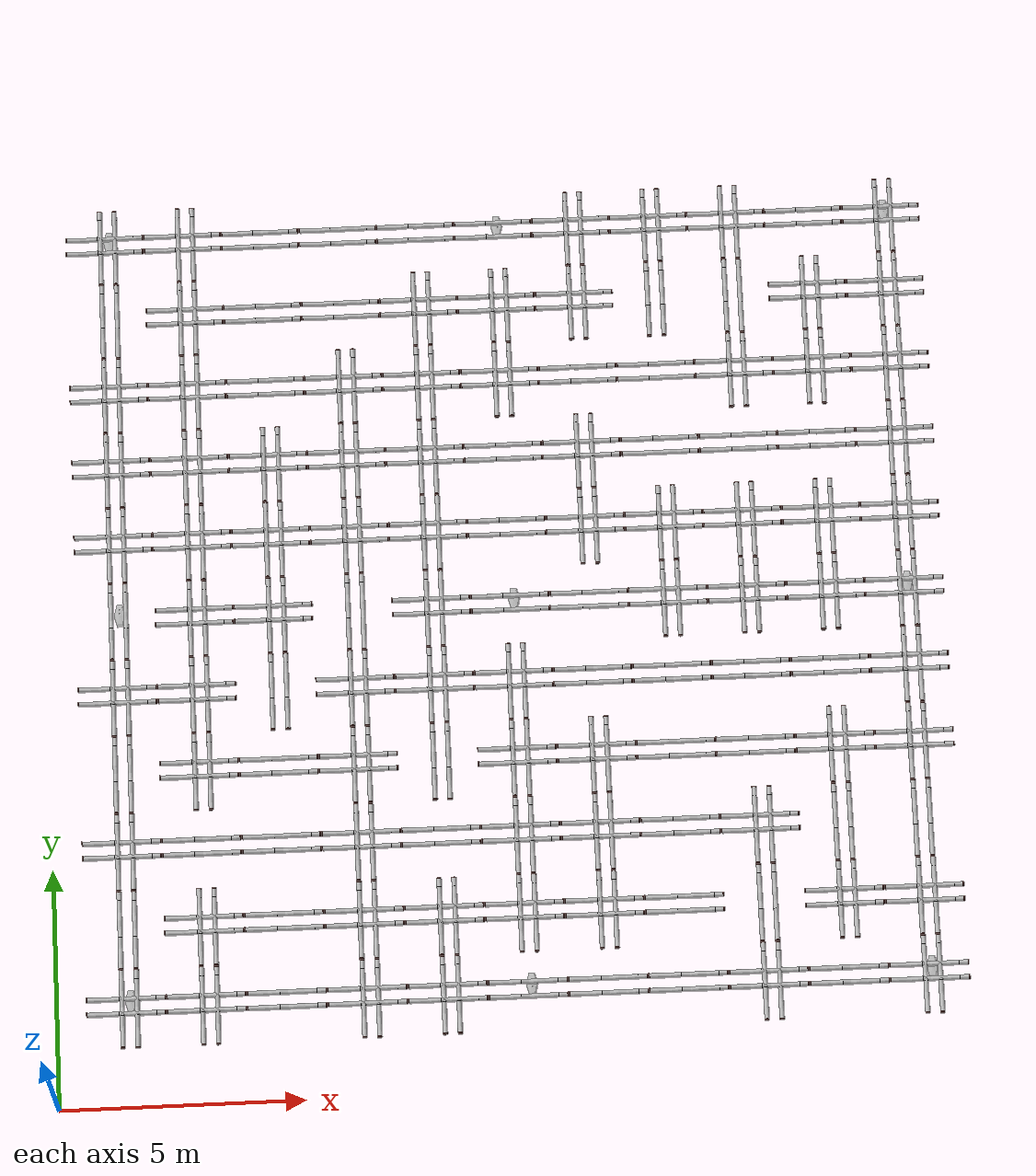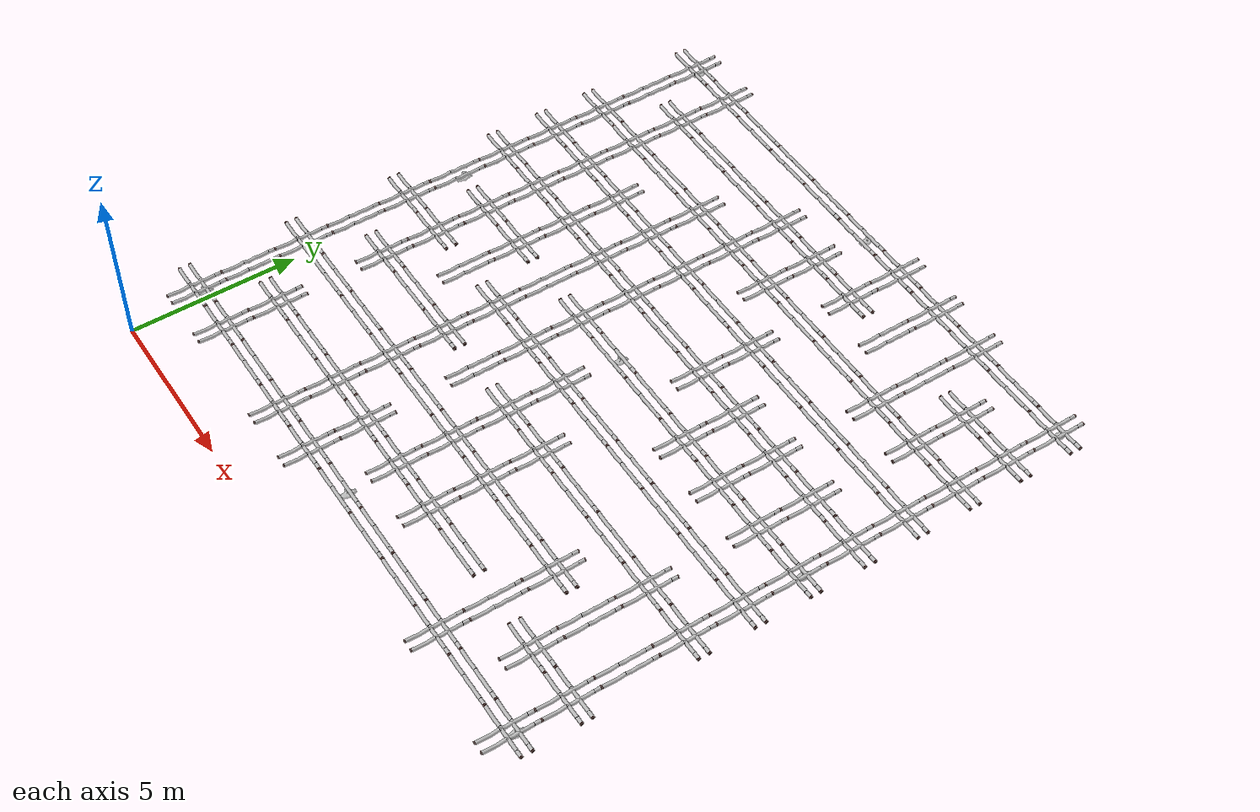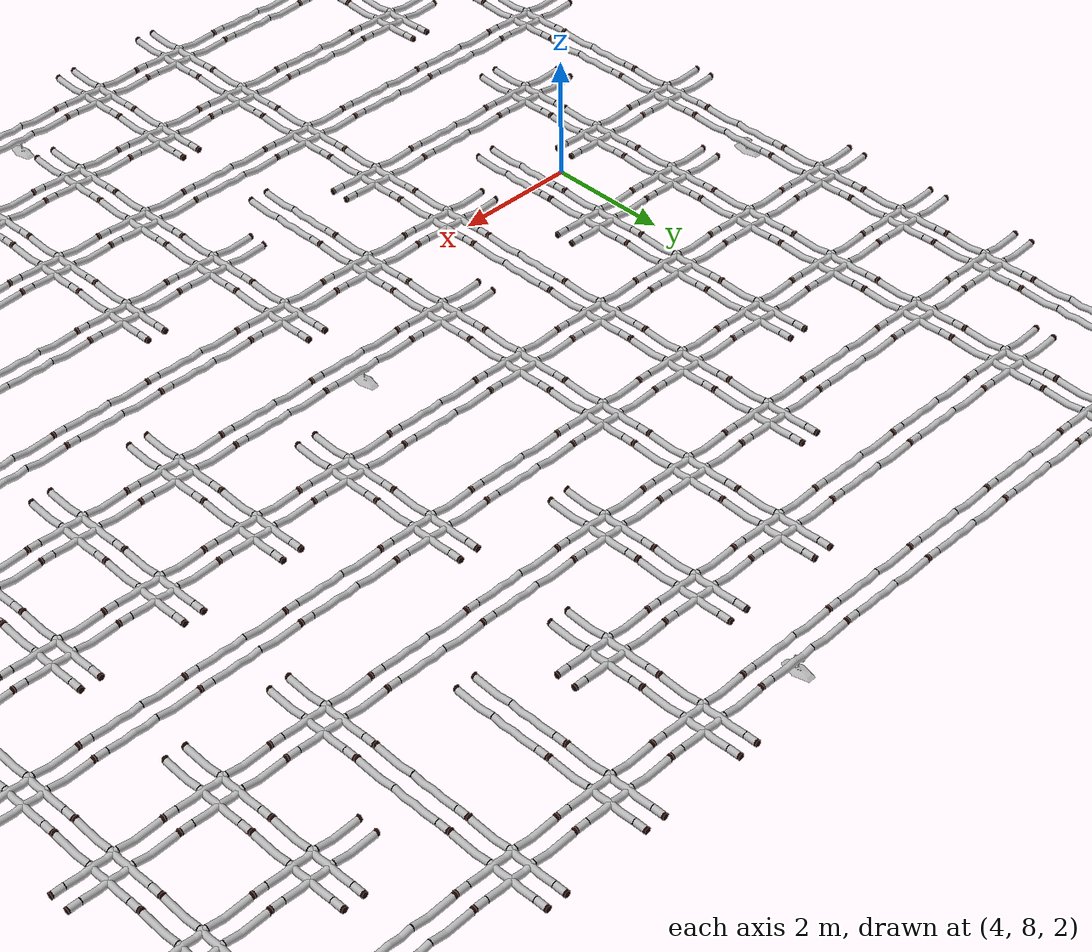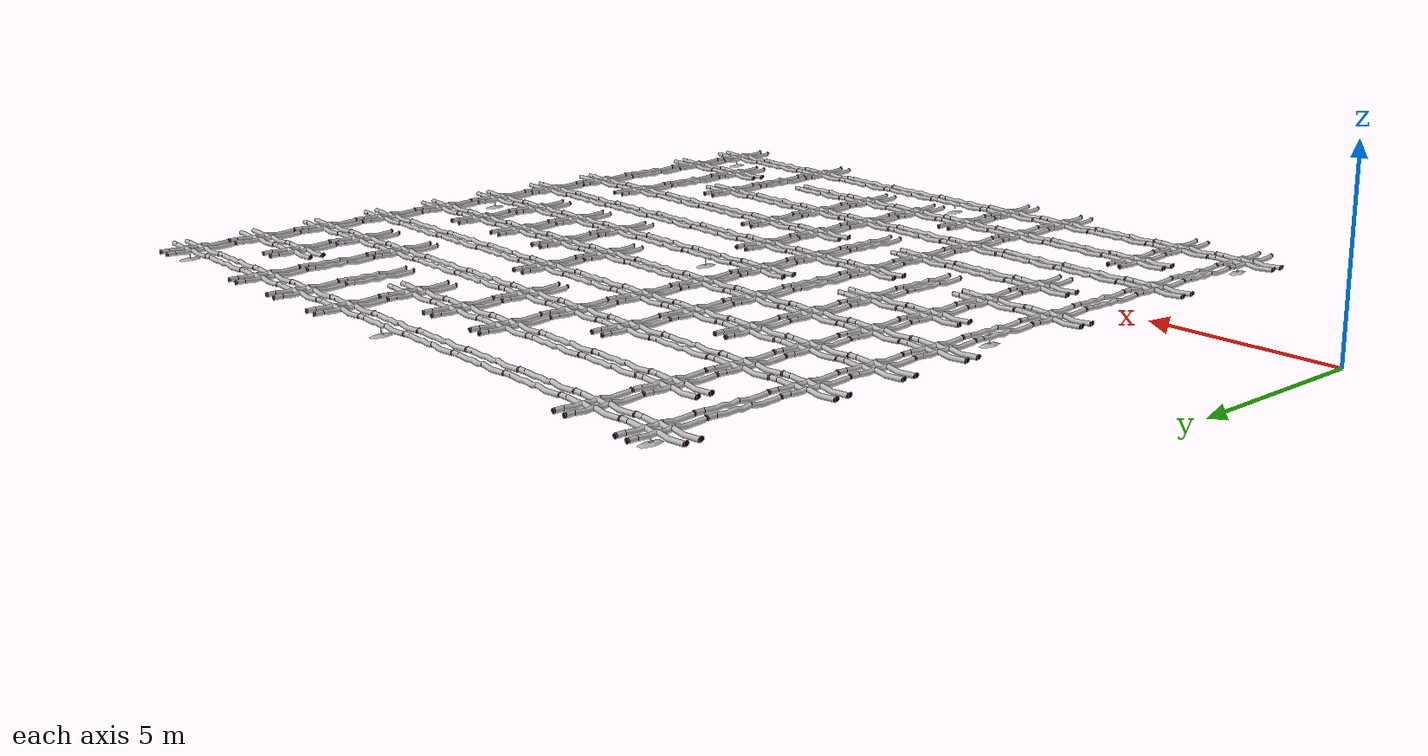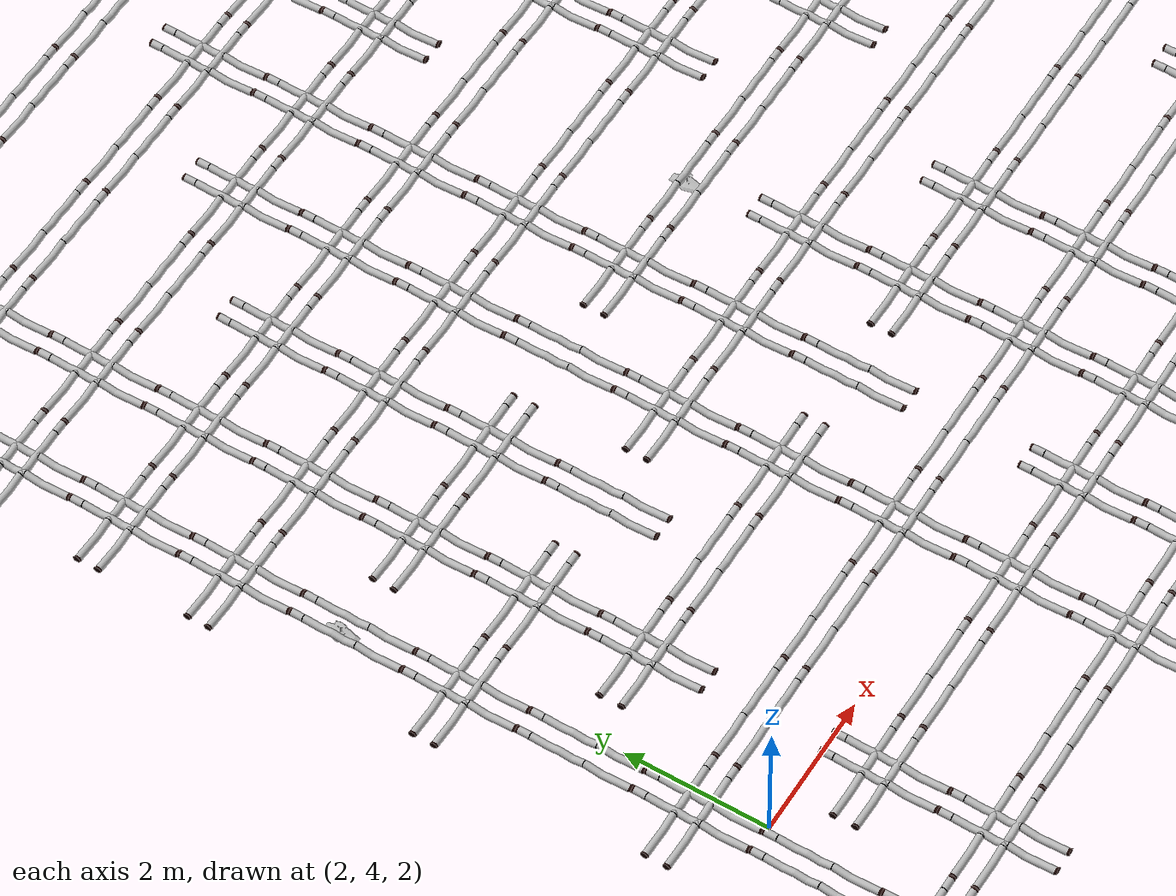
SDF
<?xml version="1.0" ?>
<sdf version="1.5">
  <model name="practice_second_top2">

    <include>
      <name>r1_1</name>
      <pose>0.8 1.6 0 0 0 0</pose>
      <uri>model://rubber_wire</uri>
    </include>
    <include>
      <name>r2_1</name>
      <pose>2.4 1.6 0 0 0 0</pose>
      <uri>model://rubber_wire</uri>
    </include>
    <include>
      <name>r3_1</name>
      <pose>4 1.6 0 0 0 0</pose>
      <uri>model://rubber_wire</uri>
    </include>
    <include>
      <name>r4_1</name>
      <pose>5.6 1.6 0 0 0 0</pose>
      <uri>model://rubber_wire</uri>
    </include>
    <include>
      <name>r5_1</name>
      <pose>7.2 1.6 0 0 0 0</pose>
      <uri>model://rubber_wire</uri>
    </include>
    <include>
      <name>r6_1</name>
      <pose>8.8 1.6 0 0 0 0</pose>
      <uri>model://rubber_wire</uri>
    </include>
    <include>
      <name>r7_1</name>
      <pose>10.4 1.6 0 0 0 0</pose>
      <uri>model://rubber_wire</uri>
    </include>
    <include>
      <name>r8_1</name>
      <pose>12 1.6 0 0 0 0</pose>
      <uri>model://rubber_wire</uri>
    </include>
    <include>
      <name>r9_1</name>
      <pose>13.6 1.6 0 0 0 0</pose>
      <uri>model://rubber_wire</uri>
    </include>
    <include>
      <name>r10_1</name>
      <pose>15.2 1.6 0 0 0 0</pose>
      <uri>model://rubber_wire</uri>
    </include>
    <include>
      <name>r11_1</name>
      <pose>16.8 1.6 0 0 0 0</pose>
      <uri>model://rubber_wire</uri>
    </include>

    <include>
      <name>r2_2</name>
      <pose>2.4 3.2 0 0 0 0</pose>
      <uri>model://rubber_wire</uri>
    </include>
    <include>
      <name>r3_2</name>
      <pose>4 3.2 0 0 0 0</pose>
      <uri>model://rubber_wire</uri>
    </include>
    <include>
      <name>r4_2</name>
      <pose>5.6 3.2 0 0 0 0</pose>
      <uri>model://rubber_wire</uri>
    </include>
    <include>
      <name>r5_2</name>
      <pose>7.2 3.2 0 0 0 0</pose>
      <uri>model://rubber_wire</uri>
    </include>
    <include>
      <name>r6_2</name>
      <pose>8.8 3.2 0 0 0 0</pose>
      <uri>model://rubber_wire</uri>
    </include>
    <include>
      <name>r7_2</name>
      <pose>10.4 3.2 0 0 0 0</pose>
      <uri>model://rubber_wire</uri>
    </include>
    <include>
      <name>r8_2</name>
      <pose>12 3.2 0 0 0 0</pose>
      <uri>model://rubber_wire</uri>
    </include>
    <include>
      <name>r10_2</name>
      <pose>15.2 3.2 0 0 0 0</pose>
      <uri>model://rubber_wire</uri>
    </include>
    <include>
      <name>r11_2</name>
      <pose>16.8 3.2 0 0 0 0</pose>
      <uri>model://rubber_wire</uri>
    </include>

    <include>
      <name>r1_3</name>
      <pose>0.8 4.8 0 0 0 0</pose>
      <uri>model://rubber_wire</uri>
    </include>
    <include>
      <name>r2_3</name>
      <pose>2.4 4.8 0 0 0 0</pose>
      <uri>model://rubber_wire</uri>
    </include>
    <include>
      <name>r3_3</name>
      <pose>4 4.8 0 0 0 0</pose>
      <uri>model://rubber_wire</uri>
    </include>
    <include>
      <name>r4_3</name>
      <pose>5.6 4.8 0 0 0 0</pose>
      <uri>model://rubber_wire</uri>
    </include>
    <include>
      <name>r5_3</name>
      <pose>7.2 4.8 0 0 0 0</pose>
      <uri>model://rubber_wire</uri>
    </include>
    <include>
      <name>r6_3</name>
      <pose>8.8 4.8 0 0 0 0</pose>
      <uri>model://rubber_wire</uri>
    </include>
    <include>
      <name>r7_3</name>
      <pose>10.4 4.8 0 0 0 0</pose>
      <uri>model://rubber_wire</uri>
    </include>
    <include>
      <name>r8_3</name>
      <pose>12 4.8 0 0 0 0</pose>
      <uri>model://rubber_wire</uri>
    </include>
    <include>
      <name>r9_3</name>
      <pose>13.6 4.8 0 0 0 0</pose>
      <uri>model://rubber_wire</uri>
    </include>

    <include>
      <name>r2_4</name>
      <pose>2.4 6.4 0 0 0 0</pose>
      <uri>model://rubber_wire</uri>
    </include>
    <include>
      <name>r3_4</name>
      <pose>4 6.4 0 0 0 0</pose>
      <uri>model://rubber_wire</uri>
    </include>
    <include>
      <name>r4_4</name>
      <pose>5.6 6.4 0 0 0 0</pose>
      <uri>model://rubber_wire</uri>
    </include>
    <include>
      <name>r6_4</name>
      <pose>8.8 6.4 0 0 0 0</pose>
      <uri>model://rubber_wire</uri>
    </include>
    <include>
      <name>r7_4</name>
      <pose>10.4 6.4 0 0 0 0</pose>
      <uri>model://rubber_wire</uri>
    </include>
    <include>
      <name>r8_4</name>
      <pose>12 6.4 0 0 0 0</pose>
      <uri>model://rubber_wire</uri>
    </include>
    <include>
      <name>r9_4</name>
      <pose>13.6 6.4 0 0 0 0</pose>
      <uri>model://rubber_wire</uri>
    </include>
    <include>
      <name>r10_4</name>
      <pose>15.2 6.4 0 0 0 0</pose>
      <uri>model://rubber_wire</uri>
    </include>
    <include>
      <name>r11_4</name>
      <pose>16.8 6.4 0 0 0 0</pose>
      <uri>model://rubber_wire</uri>
    </include>

    <include>
      <name>r1_5</name>
      <pose>0.8 8 0 0 0 0</pose>
      <uri>model://rubber_wire</uri>
    </include>
    <include>
      <name>r2_5</name>
      <pose>2.4 8 0 0 0 0</pose>
      <uri>model://rubber_wire</uri>
    </include>
    <include>
      <name>r4_5</name>
      <pose>5.6 8 0 0 0 0</pose>
      <uri>model://rubber_wire</uri>
    </include>
    <include>
      <name>r5_5</name>
      <pose>7.2 8 0 0 0 0</pose>
      <uri>model://rubber_wire</uri>
    </include>
    <include>
      <name>r6_5</name>
      <pose>8.8 8 0 0 0 0</pose>
      <uri>model://rubber_wire</uri>
    </include>
    <include>
      <name>r7_5</name>
      <pose>10.4 8 0 0 0 0</pose>
      <uri>model://rubber_wire</uri>
    </include>
    <include>
      <name>r8_5</name>
      <pose>12 8 0 0 0 0</pose>
      <uri>model://rubber_wire</uri>
    </include>
    <include>
      <name>r9_5</name>
      <pose>13.6 8 0 0 0 0</pose>
      <uri>model://rubber_wire</uri>
    </include>
    <include>
      <name>r10_5</name>
      <pose>15.2 8 0 0 0 0</pose>
      <uri>model://rubber_wire</uri>
    </include>
    <include>
      <name>r11_5</name>
      <pose>16.8 8 0 0 0 0</pose>
      <uri>model://rubber_wire</uri>
    </include>

    <include>
      <name>r2_6</name>
      <pose>2.4 9.6 0 0 0 0</pose>
      <uri>model://rubber_wire</uri>
    </include>
    <include>
      <name>r3_6</name>
      <pose>4 9.6 0 0 0 0</pose>
      <uri>model://rubber_wire</uri>
    </include>
    <include>
      <name>r5_6</name>
      <pose>7.2 9.6 0 0 0 0</pose>
      <uri>model://rubber_wire</uri>
    </include>
    <include>
      <name>r6_6</name>
      <pose>8.8 9.6 0 0 0 0</pose>
      <uri>model://rubber_wire</uri>
    </include>
    <include>
      <name>r7_6</name>
      <pose>10.4 9.6 0 0 0 0</pose>
      <uri>model://rubber_wire</uri>
    </include>
    <include>
      <name>r8_6</name>
      <pose>12 9.6 0 0 0 0</pose>
      <uri>model://rubber_wire</uri>
    </include>
    <include>
      <name>r9_6</name>
      <pose>13.6 9.6 0 0 0 0</pose>
      <uri>model://rubber_wire</uri>
    </include>
    <include>
      <name>r10_6</name>
      <pose>15.2 9.6 0 0 0 0</pose>
      <uri>model://rubber_wire</uri>
    </include>
    <include>
      <name>r11_6</name>
      <pose>16.8 9.6 0 0 0 0</pose>
      <uri>model://rubber_wire</uri>
    </include>

    <include>
      <name>r1_7</name>
      <pose>0.8 11.2 0 0 0 0</pose>
      <uri>model://rubber_wire</uri>
    </include>
    <include>
      <name>r2_7</name>
      <pose>2.4 11.2 0 0 0 0</pose>
      <uri>model://rubber_wire</uri>
    </include>
    <include>
      <name>r3_7</name>
      <pose>4 11.2 0 0 0 0</pose>
      <uri>model://rubber_wire</uri>
    </include>
    <include>
      <name>r4_7</name>
      <pose>5.6 11.2 0 0 0 0</pose>
      <uri>model://rubber_wire</uri>
    </include>
    <include>
      <name>r5_7</name>
      <pose>7.2 11.2 0 0 0 0</pose>
      <uri>model://rubber_wire</uri>
    </include>
    <include>
      <name>r6_7</name>
      <pose>8.8 11.2 0 0 0 0</pose>
      <uri>model://rubber_wire</uri>
    </include>
    <include>
      <name>r7_7</name>
      <pose>10.4 11.2 0 0 0 0</pose>
      <uri>model://rubber_wire</uri>
    </include>
    <include>
      <name>r8_7</name>
      <pose>12 11.2 0 0 0 0</pose>
      <uri>model://rubber_wire</uri>
    </include>
    <include>
      <name>r9_7</name>
      <pose>13.6 11.2 0 0 0 0</pose>
      <uri>model://rubber_wire</uri>
    </include>
    <include>
      <name>r10_7</name>
      <pose>15.2 11.2 0 0 0 0</pose>
      <uri>model://rubber_wire</uri>
    </include>
    <include>
      <name>r11_7</name>
      <pose>16.8 11.2 0 0 0 0</pose>
      <uri>model://rubber_wire</uri>
    </include>

    <include>
      <name>r1_8</name>
      <pose>0.8 12.8 0 0 0 0</pose>
      <uri>model://rubber_wire</uri>
    </include>
    <include>
      <name>r2_8</name>
      <pose>2.4 12.8 0 0 0 0</pose>
      <uri>model://rubber_wire</uri>
    </include>
    <include>
      <name>r3_8</name>
      <pose>4 12.8 0 0 0 0</pose>
      <uri>model://rubber_wire</uri>
    </include>
    <include>
      <name>r4_8</name>
      <pose>5.6 12.8 0 0 0 0</pose>
      <uri>model://rubber_wire</uri>
    </include>
    <include>
      <name>r5_8</name>
      <pose>7.2 12.8 0 0 0 0</pose>
      <uri>model://rubber_wire</uri>
    </include>
    <include>
      <name>r6_8</name>
      <pose>8.8 12.8 0 0 0 0</pose>
      <uri>model://rubber_wire</uri>
    </include>
    <include>
      <name>r7_8</name>
      <pose>10.4 12.8 0 0 0 0</pose>
      <uri>model://rubber_wire</uri>
    </include>
    <include>
      <name>r8_8</name>
      <pose>12 12.8 0 0 0 0</pose>
      <uri>model://rubber_wire</uri>
    </include>
    <include>
      <name>r9_8</name>
      <pose>13.6 12.8 0 0 0 0</pose>
      <uri>model://rubber_wire</uri>
    </include>
    <include>
      <name>r10_8</name>
      <pose>15.2 12.8 0 0 0 0</pose>
      <uri>model://rubber_wire</uri>
    </include>
    <include>
      <name>r11_8</name>
      <pose>16.8 12.8 0 0 0 0</pose>
      <uri>model://rubber_wire</uri>
    </include>

    <include>
      <name>r1_9</name>
      <pose>0.8 14.4 0 0 0 0</pose>
      <uri>model://rubber_wire</uri>
    </include>
    <include>
      <name>r2_9</name>
      <pose>2.4 14.4 0 0 0 0</pose>
      <uri>model://rubber_wire</uri>
    </include>
    <include>
      <name>r3_9</name>
      <pose>4 14.4 0 0 0 0</pose>
      <uri>model://rubber_wire</uri>
    </include>
    <include>
      <name>r4_9</name>
      <pose>5.6 14.4 0 0 0 0</pose>
      <uri>model://rubber_wire</uri>
    </include>
    <include>
      <name>r5_9</name>
      <pose>7.2 14.4 0 0 0 0</pose>
      <uri>model://rubber_wire</uri>
    </include>
    <include>
      <name>r6_9</name>
      <pose>8.8 14.4 0 0 0 0</pose>
      <uri>model://rubber_wire</uri>
    </include>
    <include>
      <name>r7_9</name>
      <pose>10.4 14.4 0 0 0 0</pose>
      <uri>model://rubber_wire</uri>
    </include>
    <include>
      <name>r8_9</name>
      <pose>12 14.4 0 0 0 0</pose>
      <uri>model://rubber_wire</uri>
    </include>
    <include>
      <name>r9_9</name>
      <pose>13.6 14.4 0 0 0 0</pose>
      <uri>model://rubber_wire</uri>
    </include>
    <include>
      <name>r10_9</name>
      <pose>15.2 14.4 0 0 0 0</pose>
      <uri>model://rubber_wire</uri>
    </include>
    <include>
      <name>r11_9</name>
      <pose>16.8 14.4 0 0 0 0</pose>
      <uri>model://rubber_wire</uri>
    </include>

    <include>
      <name>r2_10</name>
      <pose>2.4 16 0 0 0 0</pose>
      <uri>model://rubber_wire</uri>
    </include>
    <include>
      <name>r3_10</name>
      <pose>4 16 0 0 0 0</pose>
      <uri>model://rubber_wire</uri>
    </include>
    <include>
      <name>r4_10</name>
      <pose>5.6 16 0 0 0 0</pose>
      <uri>model://rubber_wire</uri>
    </include>
    <include>
      <name>r5_10</name>
      <pose>7.2 16 0 0 0 0</pose>
      <uri>model://rubber_wire</uri>
    </include>
    <include>
      <name>r6_10</name>
      <pose>8.8 16 0 0 0 0</pose>
      <uri>model://rubber_wire</uri>
    </include>
    <include>
      <name>r7_10</name>
      <pose>10.4 16 0 0 0 0</pose>
      <uri>model://rubber_wire</uri>
    </include>
    <include>
      <name>r10_10</name>
      <pose>15.2 16 0 0 0 0</pose>
      <uri>model://rubber_wire</uri>
    </include>
    <include>
      <name>r11_10</name>
      <pose>16.8 16 0 0 0 0</pose>
      <uri>model://rubber_wire</uri>
    </include>

    <include>
      <name>r1_0</name>
      <pose>0.8 17.6 0 0 0 0</pose>
      <uri>model://rubber_wire</uri>
    </include>
    <include>
      <name>r2_0</name>
      <pose>2.4 17.6 0 0 0 0</pose>
      <uri>model://rubber_wire</uri>
    </include>
    <include>
      <name>r3_0</name>
      <pose>4 17.6 0 0 0 0</pose>
      <uri>model://rubber_wire</uri>
    </include>
    <include>
      <name>r4_0</name>
      <pose>5.6 17.6 0 0 0 0</pose>
      <uri>model://rubber_wire</uri>
    </include>
    <include>
      <name>r5_0</name>
      <pose>7.2 17.6 0 0 0 0</pose>
      <uri>model://rubber_wire</uri>
    </include>
    <include>
      <name>r6_0</name>
      <pose>8.8 17.6 0 0 0 0</pose>
      <uri>model://rubber_wire</uri>
    </include>
    <include>
      <name>r7_0</name>
      <pose>10.4 17.6 0 0 0 0</pose>
      <uri>model://rubber_wire</uri>
    </include>
    <include>
      <name>r8_0</name>
      <pose>12 17.6 0 0 0 0</pose>
      <uri>model://rubber_wire</uri>
    </include>
    <include>
      <name>r9_0</name>
      <pose>13.6 17.6 0 0 0 0</pose>
      <uri>model://rubber_wire</uri>
    </include>
    <include>
      <name>r10_0</name>
      <pose>15.2 17.6 0 0 0 0</pose>
      <uri>model://rubber_wire</uri>
    </include>
    <include>
      <name>r11_0</name>
      <pose>16.8 17.6 0 0 0 0</pose>
      <uri>model://rubber_wire</uri>
    </include>

    <include>
      <name>c1_1</name>
      <pose>1.6 0.8 0 0 0 1.57</pose>
      <uri>model://rubber_wire</uri>
    </include>
    <include>
      <name>c1_2</name>
      <pose>1.6 2.4 0 0 0 1.57</pose>
      <uri>model://rubber_wire</uri>
    </include>
    <include>
      <name>c1_3</name>
      <pose>1.6 4 0 0 0 1.57</pose>
      <uri>model://rubber_wire</uri>
    </include>
    <include>
      <name>c1_4</name>
      <pose>1.6 5.6 0 0 0 1.57</pose>
      <uri>model://rubber_wire</uri>
    </include>
    <include>
      <name>c1_5</name>
      <pose>1.6 7.2 0 0 0 1.57</pose>
      <uri>model://rubber_wire</uri>
    </include>
    <include>
      <name>c1_6</name>
      <pose>1.6 8.8 0 0 0 1.57</pose>
      <uri>model://rubber_wire</uri>
    </include>
    <include>
      <name>c1_7</name>
      <pose>1.6 10.4 0 0 0 1.57</pose>
      <uri>model://rubber_wire</uri>
    </include>
    <include>
      <name>c1_8</name>
      <pose>1.6 12 0 0 0 1.57</pose>
      <uri>model://rubber_wire</uri>
    </include>
    <include>
      <name>c1_9</name>
      <pose>1.6 13.6 0 0 0 1.57</pose>
      <uri>model://rubber_wire</uri>
    </include>
    <include>
      <name>c1_10</name>
      <pose>1.6 15.2 0 0 0 1.57</pose>
      <uri>model://rubber_wire</uri>
    </include>
    <include>
      <name>c1_11</name>
      <pose>1.6 16.8 0 0 0 1.57</pose>
      <uri>model://rubber_wire</uri>
    </include>

    <include>
      <name>c2_1</name>
      <pose>3.2 0.8 0 0 0 1.57</pose>
      <uri>model://rubber_wire</uri>
    </include>
    <include>
      <name>c2_2</name>
      <pose>3.2 2.4 0 0 0 1.57</pose>
      <uri>model://rubber_wire</uri>
    </include>
    <include>
      <name>c2_4</name>
      <pose>3.2 5.6 0 0 0 1.57</pose>
      <uri>model://rubber_wire</uri>
    </include>
    <include>
      <name>c2_5</name>
      <pose>3.2 7.2 0 0 0 1.57</pose>
      <uri>model://rubber_wire</uri>
    </include>
    <include>
      <name>c2_6</name>
      <pose>3.2 8.8 0 0 0 1.57</pose>
      <uri>model://rubber_wire</uri>
    </include>
    <include>
      <name>c2_7</name>
      <pose>3.2 10.4 0 0 0 1.57</pose>
      <uri>model://rubber_wire</uri>
    </include>
    <include>
      <name>c2_8</name>
      <pose>3.2 12 0 0 0 1.57</pose>
      <uri>model://rubber_wire</uri>
    </include>
    <include>
      <name>c2_9</name>
      <pose>3.2 13.6 0 0 0 1.57</pose>
      <uri>model://rubber_wire</uri>
    </include>
    <include>
      <name>c2_10</name>
      <pose>3.2 15.2 0 0 0 1.57</pose>
      <uri>model://rubber_wire</uri>
    </include>
    <include>
      <name>c2_11</name>
      <pose>3.2 16.8 0 0 0 1.57</pose>
      <uri>model://rubber_wire</uri>
    </include>

    <include>
      <name>c3_5</name>
      <pose>4.8 7.2 0 0 0 1.57</pose>
      <uri>model://rubber_wire</uri>
    </include>
    <include>
      <name>c3_6</name>
      <pose>4.8 8.8 0 0 0 1.57</pose>
      <uri>model://rubber_wire</uri>
    </include>
    <include>
      <name>c3_7</name>
      <pose>4.8 10.4 0 0 0 1.57</pose>
      <uri>model://rubber_wire</uri>
    </include>
    <include>
      <name>c3_8</name>
      <pose>4.8 12 0 0 0 1.57</pose>
      <uri>model://rubber_wire</uri>
    </include>

    <include>
      <name>c4_1</name>
      <pose>6.4 0.8 0 0 0 1.57</pose>
      <uri>model://rubber_wire</uri>
    </include>
    <include>
      <name>c4.4_2</name>
      <pose>6.4 2.4 0 0 0 1.57</pose>
      <uri>model://rubber_wire</uri>
    </include>
    <include>
      <name>c4_3</name>
      <pose>6.4 4 0 0 0 1.57</pose>
      <uri>model://rubber_wire</uri>
    </include>
    <include>
      <name>c4_4</name>
      <pose>6.4 5.6 0 0 0 1.57</pose>
      <uri>model://rubber_wire</uri>
    </include>
    <include>
      <name>c4_5</name>
      <pose>6.4 7.2 0 0 0 1.57</pose>
      <uri>model://rubber_wire</uri>
    </include>
    <include>
      <name>c4_6</name>
      <pose>6.4 8.8 0 0 0 1.57</pose>
      <uri>model://rubber_wire</uri>
    </include>
    <include>
      <name>c4_7</name>
      <pose>6.4 10.4 0 0 0 1.57</pose>
      <uri>model://rubber_wire</uri>
    </include>
    <include>
      <name>c4_8</name>
      <pose>6.4 12 0 0 0 1.57</pose>
      <uri>model://rubber_wire</uri>
    </include>
    <include>
      <name>c4_9</name>
      <pose>6.4 13.6 0 0 0 1.57</pose>
      <uri>model://rubber_wire</uri>
    </include>

    <include>
      <name>c5_1</name>
      <pose>8 0.8 0 0 0 1.57</pose>
      <uri>model://rubber_wire</uri>
    </include>
    <include>
      <name>c5_2</name>
      <pose>8 2.4 0 0 0 1.57</pose>
      <uri>model://rubber_wire</uri>
    </include>
    <include>
      <name>c5_4</name>
      <pose>8 5.6 0 0 0 1.57</pose>
      <uri>model://rubber_wire</uri>
    </include>
    <include>
      <name>c5_5</name>
      <pose>8 7.2 0 0 0 1.57</pose>
      <uri>model://rubber_wire</uri>
    </include>
    <include>
      <name>c5_6</name>
      <pose>8 8.8 0 0 0 1.57</pose>
      <uri>model://rubber_wire</uri>
    </include>
    <include>
      <name>c5_7</name>
      <pose>8 10.4 0 0 0 1.57</pose>
      <uri>model://rubber_wire</uri>
    </include>
    <include>
      <name>c5_8</name>
      <pose>8 12 0 0 0 1.57</pose>
      <uri>model://rubber_wire</uri>
    </include>
    <include>
      <name>c5_9</name>
      <pose>8 13.6 0 0 0 1.57</pose>
      <uri>model://rubber_wire</uri>
    </include>
    <include>
      <name>c5_10</name>
      <pose>8 15.2 0 0 0 1.57</pose>
      <uri>model://rubber_wire</uri>
    </include>

    <include>
      <name>c6_2</name>
      <pose>9.6 2.4 0 0 0 1.57</pose>
      <uri>model://rubber_wire</uri>
    </include>
    <include>
      <name>c6_3</name>
      <pose>9.6 4 0 0 0 1.57</pose>
      <uri>model://rubber_wire</uri>
    </include>
    <include>
      <name>c6_4</name>
      <pose>9.6 5.6 0 0 0 1.57</pose>
      <uri>model://rubber_wire</uri>
    </include>
    <include>
      <name>c6_5</name>
      <pose>9.6 7.2 0 0 0 1.57</pose>
      <uri>model://rubber_wire</uri>
    </include>
    <include>
      <name>c6_9</name>
      <pose>9.6 13.6 0 0 0 1.57</pose>
      <uri>model://rubber_wire</uri>
    </include>
    <include>
      <name>c6_10</name>
      <pose>9.6 15.2 0 0 0 1.57</pose>
      <uri>model://rubber_wire</uri>
    </include>

    <include>
      <name>c7_2</name>
      <pose>11.2 2.4 0 0 0 1.57</pose>
      <uri>model://rubber_wire</uri>
    </include>
    <include>
      <name>c7_3</name>
      <pose>11.2 4 0 0 0 1.57</pose>
      <uri>model://rubber_wire</uri>
    </include>
    <include>
      <name>c7_4</name>
      <pose>11.2 5.6 0 0 0 1.57</pose>
      <uri>model://rubber_wire</uri>
    </include>
    <include>
      <name>c7_7</name>
      <pose>11.2 10.4 0 0 0 1.57</pose>
      <uri>model://rubber_wire</uri>
    </include>
    <include>
      <name>c7_8</name>
      <pose>11.2 12 0 0 0 1.57</pose>
      <uri>model://rubber_wire</uri>
    </include>
    <include>
      <name>c7_10</name>
      <pose>11.2 15.2 0 0 0 1.57</pose>
      <uri>model://rubber_wire</uri>
    </include>
    <include>
      <name>c7_11</name>
      <pose>11.2 16.8 0 0 0 1.57</pose>
      <uri>model://rubber_wire</uri>
    </include>

    <include>
      <name>c8_6</name>
      <pose>12.8 8.8 0 0 0 1.57</pose>
      <uri>model://rubber_wire</uri>
    </include>
    <include>
      <name>c8_7</name>
      <pose>12.8 10.4 0 0 0 1.57</pose>
      <uri>model://rubber_wire</uri>
    </include>
    <include>
      <name>c8_10</name>
      <pose>12.8 15.2 0 0 0 1.57</pose>
      <uri>model://rubber_wire</uri>
    </include>
    <include>
      <name>c8_11</name>
      <pose>12.8 16.8 0 0 0 1.57</pose>
      <uri>model://rubber_wire</uri>
    </include>

    <include>
      <name>c9_1</name>
      <pose>14.4 0.8 0 0 0 1.57</pose>
      <uri>model://rubber_wire</uri>
    </include>
    <include>
      <name>c9_2</name>
      <pose>14.4 2.4 0 0 0 1.57</pose>
      <uri>model://rubber_wire</uri>
    </include>
    <include>
      <name>c9_3</name>
      <pose>14.4 4 0 0 0 1.57</pose>
      <uri>model://rubber_wire</uri>
    </include>
    <include>
      <name>c9_6</name>
      <pose>14.4 8.8 0 0 0 1.57</pose>
      <uri>model://rubber_wire</uri>
    </include>
    <include>
      <name>c9_7</name>
      <pose>14.4 10.4 0 0 0 1.57</pose>
      <uri>model://rubber_wire</uri>
    </include>
    <include>
      <name>c9_9</name>
      <pose>14.4 13.6 0 0 0 1.57</pose>
      <uri>model://rubber_wire</uri>
    </include>
    <include>
      <name>c9_10</name>
      <pose>14.4 15.2 0 0 0 1.57</pose>
      <uri>model://rubber_wire</uri>
    </include>
    <include>
      <name>c9_11</name>
      <pose>14.4 16.8 0 0 0 1.57</pose>
      <uri>model://rubber_wire</uri>
    </include>

    <include>
      <name>c10_2</name>
      <pose>16 2.4 0 0 0 1.57</pose>
      <uri>model://rubber_wire</uri>
    </include>
    <include>
      <name>c10_3</name>
      <pose>16 4 0 0 0 1.57</pose>
      <uri>model://rubber_wire</uri>
    </include>
    <include>
      <name>c10_4</name>
      <pose>16 5.6 0 0 0 1.57</pose>
      <uri>model://rubber_wire</uri>
    </include>
    <include>
      <name>c10_6</name>
      <pose>16 8.8 0 0 0 1.57</pose>
      <uri>model://rubber_wire</uri>
    </include>
    <include>
      <name>c10_7</name>
      <pose>16 10.4 0 0 0 1.57</pose>
      <uri>model://rubber_wire</uri>
    </include>
    <include>
      <name>c10_9</name>
      <pose>16 13.6 0 0 0 1.57</pose>
      <uri>model://rubber_wire</uri>
    </include>
    <include>
      <name>c10_10</name>
      <pose>16 15.2 0 0 0 1.57</pose>
      <uri>model://rubber_wire</uri>
    </include>

    <include>
      <name>c0_1</name>
      <pose>17.6 0.8 0 0 0 1.57</pose>
      <uri>model://rubber_wire</uri>
    </include>
    <include>
      <name>c0_2</name>
      <pose>17.6 2.4 0 0 0 1.57</pose>
      <uri>model://rubber_wire</uri>
    </include>
    <include>
      <name>c0_3</name>
      <pose>17.6 4 0 0 0 1.57</pose>
      <uri>model://rubber_wire</uri>
    </include>
    <include>
      <name>c0_4</name>
      <pose>17.6 5.6 0 0 0 1.57</pose>
      <uri>model://rubber_wire</uri>
    </include>
    <include>
      <name>c0_5</name>
      <pose>17.6 7.2 0 0 0 1.57</pose>
      <uri>model://rubber_wire</uri>
    </include>
    <include>
      <name>c0_6</name>
      <pose>17.6 8.8 0 0 0 1.57</pose>
      <uri>model://rubber_wire</uri>
    </include>
    <include>
      <name>c0_7</name>
      <pose>17.6 10.4 0 0 0 1.57</pose>
      <uri>model://rubber_wire</uri>
    </include>
    <include>
      <name>c0_8</name>
      <pose>17.6 12 0 0 0 1.57</pose>
      <uri>model://rubber_wire</uri>
    </include>
    <include>
      <name>c0_9</name>
      <pose>17.6 13.6 0 0 0 1.57</pose>
      <uri>model://rubber_wire</uri>
    </include>
    <include>
      <name>c0_10</name>
      <pose>17.6 15.2 0 0 0 1.57</pose>
      <uri>model://rubber_wire</uri>
    </include>
    <include>
      <name>c0_11</name>
      <pose>17.6 16.8 0 0 0 1.57</pose>
      <uri>model://rubber_wire</uri>
    </include>

    <include>
      <name>light1</name>
      <pose>1.5 1.5 2.3 0 0 0</pose>
      <uri>model://light_bulb</uri>
    </include>
    <include>
      <name>light2</name>
      <pose>1.5 9.5 2.3 0 0 0</pose>
      <uri>model://light_bulb</uri>
    </include>
    <include>
      <name>light3</name>
      <pose>1.5 17.5 2.3 0 0 0</pose>
      <uri>model://light_bulb</uri>
    </include>
    <include>
      <name>light4</name>
      <pose>9.5 1.5 2.3 0 0 0</pose>
      <uri>model://light_bulb</uri>
    </include>
    <include>
      <name>light5</name>
      <pose>9.5 9.5 2.3 0 0 0</pose>
      <uri>model://light_bulb</uri>
    </include>
    <include>
      <name>light6</name>
      <pose>9.5 17.5 2.3 0 0 0</pose>
      <uri>model://light_bulb</uri>
    </include>
    <include>
      <name>light7</name>
      <pose>17.5 1.5 2.3 0 0 0</pose>
      <uri>model://light_bulb</uri>
    </include>
    <include>
      <name>light8</name>
      <pose>17.5 9.5 2.3 0 0 0</pose>
      <uri>model://light_bulb</uri>
    </include>
    <include>
      <name>light9</name>
      <pose>17.5 17.5 2.3 0 0 0</pose>
      <uri>model://light_bulb</uri>
    </include>

  </model>
</sdf>

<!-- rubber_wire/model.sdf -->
<sdf version='1.5'>
<model name='rubber_wire'>
<static>true</static>
<link name="link">
   <pose frame=''>0.15 -0.15 2.35 0 1.57 0</pose>
  <visual name='visual'>
    <cast_shadows>false</cast_shadows>
    <geometry>
      <mesh>
        <scale>1.0 1.0 1.0</scale>
        <uri>model://rubber_wire/untitled.dae</uri>
      </mesh>
    </geometry>
  </visual>
</link>
<link name="link2">
   <pose frame=''>0.15 0.15 2.35 0 1.57 0</pose>
  <visual name='visual2'>
    <cast_shadows>false</cast_shadows>
    <geometry>
      <mesh>
        <scale>1.0 1.0 1.0</scale>
        <uri>model://rubber_wire/untitled.dae</uri>
      </mesh>
    </geometry>
  </visual>
</link>
</model>
</sdf>

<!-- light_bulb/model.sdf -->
<sdf version='1.5'>
<model name='light_bulb'>
<static>true</static>
<link name="link">
   <pose frame=''>0 0 0 0 0 0</pose>
  <visual name='light_bulbV'>
    <cast_shadows>false</cast_shadows>
    <geometry>
      <mesh>
        <scale>1.0 1.0 1.0</scale>
        <uri>model://light_bulb/model.dae</uri>
      </mesh>
    </geometry>
  </visual>
</link>
</model>
</sdf>
